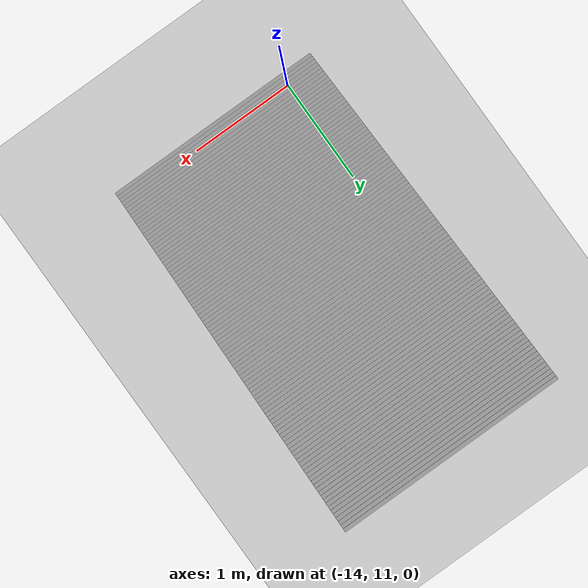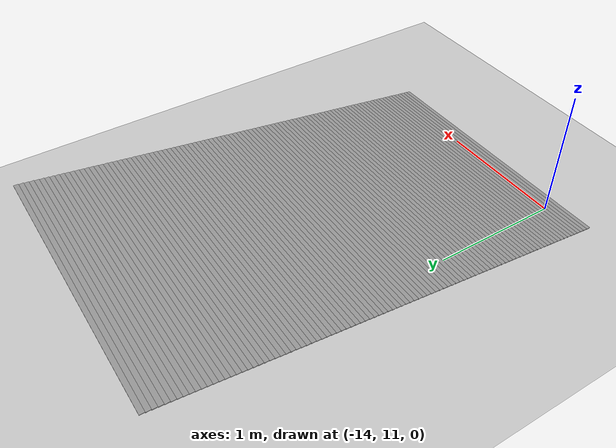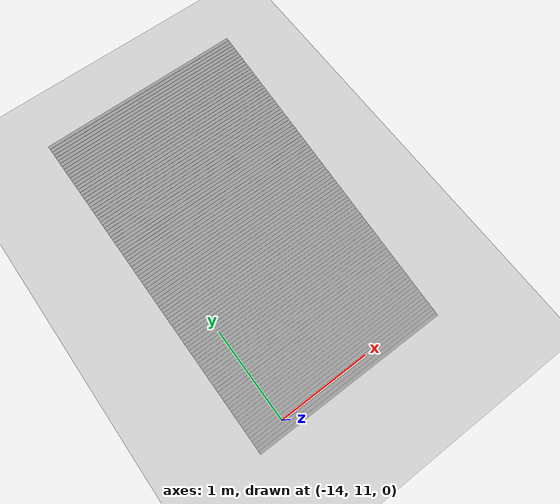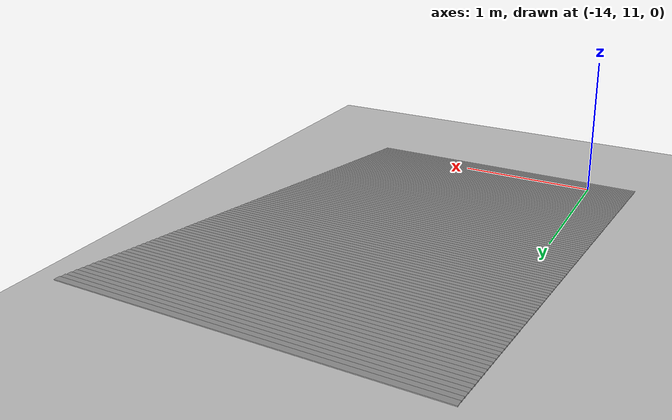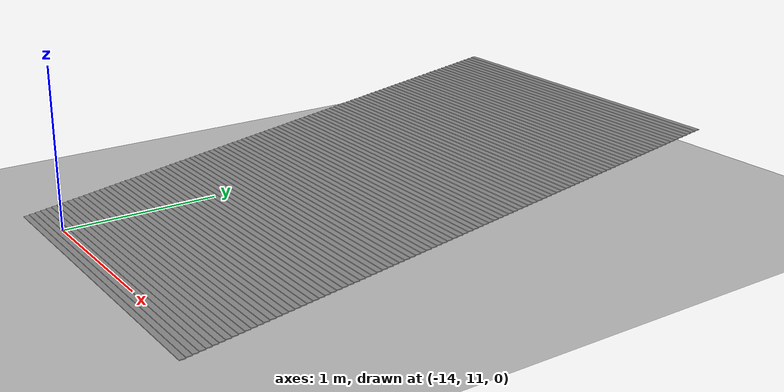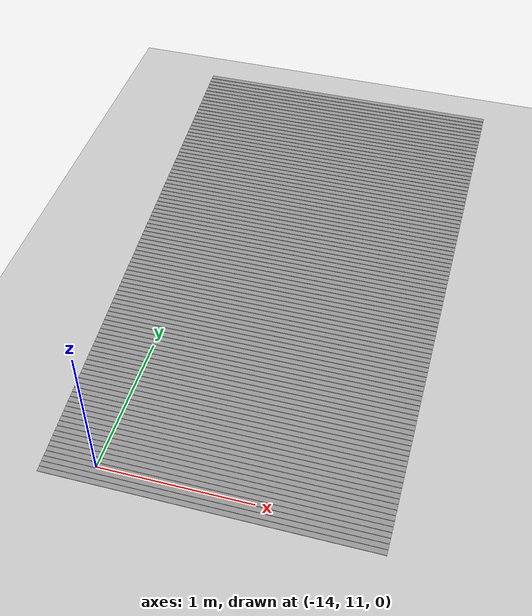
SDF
<sdf version="1.6">
 <world name="default">
  <model name="ground_plane">
   <static>1</static>
   <link name="link">
    <collision name="collision">
     <geometry><plane><normal>0 0 1</normal><size>100 100</size></plane></geometry>
     <surface><friction><ode><mu>100</mu><mu2>50</mu2></ode></friction></surface>
    </collision>
    <visual name="visual">
     <cast_shadows>0</cast_shadows>
     <geometry><plane><normal>0 0 1</normal><size>100 100</size></plane></geometry>
     <material>
      <script><uri>file://media/materials/scripts/gazebo.material</uri><name>Gazebo/Grey</name></script>
     </material>
    </visual>
   </link>
  </model>
  <model name="HRI_MAP">
   <pose>-5.86756 7.56266 0 0 -0 0</pose>
   <link name="Stairs_2">
    <visual name="Stairs_2_Visual_0">
     <pose>-7.39374 3.33186 0.0025 0 -0 -3.14159</pose>
     <geometry><box><size>2.14498 0.035 0.005</size></box></geometry>
     <material>
      <script><uri>file://media/materials/scripts/gazebo.material</uri><name>Gazebo/Grey</name></script>
      <ambient>1 1 1 1</ambient>
     </material>
    </visual>
    <collision name="Stairs_2_Collision_0">
     <geometry><box><size>2.14498 0.035 0.005</size></box></geometry>
     <pose>-7.39374 3.33186 0.0025 0 -0 -3.14159</pose>
    </collision>
    <visual name="Stairs_2_Visual_1">
     <pose>-7.39374 3.36686 0.0075 0 -0 -3.14159</pose>
     <geometry><box><size>2.14498 0.035 0.005</size></box></geometry>
     <material>
      <script><uri>file://media/materials/scripts/gazebo.material</uri><name>Gazebo/Grey</name></script>
      <ambient>1 1 1 1</ambient>
     </material>
    </visual>
    <collision name="Stairs_2_Collision_1">
     <geometry><box><size>2.14498 0.035 0.005</size></box></geometry>
     <pose>-7.39374 3.36686 0.0075 0 -0 -3.14159</pose>
    </collision>
    <visual name="Stairs_2_Visual_2">
     <pose>-7.39374 3.40186 0.0125 0 -0 -3.14159</pose>
     <geometry><box><size>2.14498 0.035 0.005</size></box></geometry>
     <material>
      <script><uri>file://media/materials/scripts/gazebo.material</uri><name>Gazebo/Grey</name></script>
      <ambient>1 1 1 1</ambient>
     </material>
    </visual>
    <collision name="Stairs_2_Collision_2">
     <geometry><box><size>2.14498 0.035 0.005</size></box></geometry>
     <pose>-7.39374 3.40186 0.0125 0 -0 -3.14159</pose>
    </collision>
    <visual name="Stairs_2_Visual_3">
     <pose>-7.39374 3.43686 0.0175 0 -0 -3.14159</pose>
     <geometry><box><size>2.14498 0.035 0.005</size></box></geometry>
     <material>
      <script><uri>file://media/materials/scripts/gazebo.material</uri><name>Gazebo/Grey</name></script>
      <ambient>1 1 1 1</ambient>
     </material>
    </visual>
    <collision name="Stairs_2_Collision_3">
     <geometry><box><size>2.14498 0.035 0.005</size></box></geometry>
     <pose>-7.39374 3.43686 0.0175 0 -0 -3.14159</pose>
    </collision>
    <visual name="Stairs_2_Visual_4">
     <pose>-7.39374 3.47186 0.0225 0 -0 -3.14159</pose>
     <geometry><box><size>2.14498 0.035 0.005</size></box></geometry>
     <material>
      <script><uri>file://media/materials/scripts/gazebo.material</uri><name>Gazebo/Grey</name></script>
      <ambient>1 1 1 1</ambient>
     </material>
    </visual>
    <collision name="Stairs_2_Collision_4">
     <geometry><box><size>2.14498 0.035 0.005</size></box></geometry>
     <pose>-7.39374 3.47186 0.0225 0 -0 -3.14159</pose>
    </collision>
    <visual name="Stairs_2_Visual_5">
     <pose>-7.39374 3.50686 0.0275 0 -0 -3.14159</pose>
     <geometry><box><size>2.14498 0.035 0.005</size></box></geometry>
     <material>
      <script><uri>file://media/materials/scripts/gazebo.material</uri><name>Gazebo/Grey</name></script>
      <ambient>1 1 1 1</ambient>
     </material>
    </visual>
    <collision name="Stairs_2_Collision_5">
     <geometry><box><size>2.14498 0.035 0.005</size></box></geometry>
     <pose>-7.39374 3.50686 0.0275 0 -0 -3.14159</pose>
    </collision>
    <visual name="Stairs_2_Visual_6">
     <pose>-7.39374 3.54186 0.0325 0 -0 -3.14159</pose>
     <geometry><box><size>2.14498 0.035 0.005</size></box></geometry>
     <material>
      <script><uri>file://media/materials/scripts/gazebo.material</uri><name>Gazebo/Grey</name></script>
      <ambient>1 1 1 1</ambient>
     </material>
    </visual>
    <collision name="Stairs_2_Collision_6">
     <geometry><box><size>2.14498 0.035 0.005</size></box></geometry>
     <pose>-7.39374 3.54186 0.0325 0 -0 -3.14159</pose>
    </collision>
    <visual name="Stairs_2_Visual_7">
     <pose>-7.39374 3.57686 0.0375 0 -0 -3.14159</pose>
     <geometry><box><size>2.14498 0.035 0.005</size></box></geometry>
     <material>
      <script><uri>file://media/materials/scripts/gazebo.material</uri><name>Gazebo/Grey</name></script>
      <ambient>1 1 1 1</ambient>
     </material>
    </visual>
    <collision name="Stairs_2_Collision_7">
     <geometry><box><size>2.14498 0.035 0.005</size></box></geometry>
     <pose>-7.39374 3.57686 0.0375 0 -0 -3.14159</pose>
    </collision>
    <visual name="Stairs_2_Visual_8">
     <pose>-7.39374 3.61186 0.0425 0 -0 -3.14159</pose>
     <geometry><box><size>2.14498 0.035 0.005</size></box></geometry>
     <material>
      <script><uri>file://media/materials/scripts/gazebo.material</uri><name>Gazebo/Grey</name></script>
      <ambient>1 1 1 1</ambient>
     </material>
    </visual>
    <collision name="Stairs_2_Collision_8">
     <geometry><box><size>2.14498 0.035 0.005</size></box></geometry>
     <pose>-7.39374 3.61186 0.0425 0 -0 -3.14159</pose>
    </collision>
    <visual name="Stairs_2_Visual_9">
     <pose>-7.39374 3.64686 0.0475 0 -0 -3.14159</pose>
     <geometry><box><size>2.14498 0.035 0.005</size></box></geometry>
     <material>
      <script><uri>file://media/materials/scripts/gazebo.material</uri><name>Gazebo/Grey</name></script>
      <ambient>1 1 1 1</ambient>
     </material>
    </visual>
    <collision name="Stairs_2_Collision_9">
     <geometry><box><size>2.14498 0.035 0.005</size></box></geometry>
     <pose>-7.39374 3.64686 0.0475 0 -0 -3.14159</pose>
    </collision>
    <visual name="Stairs_2_Visual_10">
     <pose>-7.39374 3.68186 0.0525 0 -0 -3.14159</pose>
     <geometry><box><size>2.14498 0.035 0.005</size></box></geometry>
     <material>
      <script><uri>file://media/materials/scripts/gazebo.material</uri><name>Gazebo/Grey</name></script>
      <ambient>1 1 1 1</ambient>
     </material>
    </visual>
    <collision name="Stairs_2_Collision_10">
     <geometry><box><size>2.14498 0.035 0.005</size></box></geometry>
     <pose>-7.39374 3.68186 0.0525 0 -0 -3.14159</pose>
    </collision>
    <visual name="Stairs_2_Visual_11">
     <pose>-7.39374 3.71686 0.0575 0 -0 -3.14159</pose>
     <geometry><box><size>2.14498 0.035 0.005</size></box></geometry>
     <material>
      <script><uri>file://media/materials/scripts/gazebo.material</uri><name>Gazebo/Grey</name></script>
      <ambient>1 1 1 1</ambient>
     </material>
    </visual>
    <collision name="Stairs_2_Collision_11">
     <geometry><box><size>2.14498 0.035 0.005</size></box></geometry>
     <pose>-7.39374 3.71686 0.0575 0 -0 -3.14159</pose>
    </collision>
    <visual name="Stairs_2_Visual_12">
     <pose>-7.39374 3.75186 0.0625 0 -0 -3.14159</pose>
     <geometry><box><size>2.14498 0.035 0.005</size></box></geometry>
     <material>
      <script><uri>file://media/materials/scripts/gazebo.material</uri><name>Gazebo/Grey</name></script>
      <ambient>1 1 1 1</ambient>
     </material>
    </visual>
    <collision name="Stairs_2_Collision_12">
     <geometry><box><size>2.14498 0.035 0.005</size></box></geometry>
     <pose>-7.39374 3.75186 0.0625 0 -0 -3.14159</pose>
    </collision>
    <visual name="Stairs_2_Visual_13">
     <pose>-7.39374 3.78686 0.0675 0 -0 -3.14159</pose>
     <geometry><box><size>2.14498 0.035 0.005</size></box></geometry>
     <material>
      <script><uri>file://media/materials/scripts/gazebo.material</uri><name>Gazebo/Grey</name></script>
      <ambient>1 1 1 1</ambient>
     </material>
    </visual>
    <collision name="Stairs_2_Collision_13">
     <geometry><box><size>2.14498 0.035 0.005</size></box></geometry>
     <pose>-7.39374 3.78686 0.0675 0 -0 -3.14159</pose>
    </collision>
    <visual name="Stairs_2_Visual_14">
     <pose>-7.39374 3.82186 0.0725 0 -0 -3.14159</pose>
     <geometry><box><size>2.14498 0.035 0.005</size></box></geometry>
     <material>
      <script><uri>file://media/materials/scripts/gazebo.material</uri><name>Gazebo/Grey</name></script>
      <ambient>1 1 1 1</ambient>
     </material>
    </visual>
    <collision name="Stairs_2_Collision_14">
     <geometry><box><size>2.14498 0.035 0.005</size></box></geometry>
     <pose>-7.39374 3.82186 0.0725 0 -0 -3.14159</pose>
    </collision>
    <visual name="Stairs_2_Visual_15">
     <pose>-7.39374 3.85686 0.0775 0 -0 -3.14159</pose>
     <geometry><box><size>2.14498 0.035 0.005</size></box></geometry>
     <material>
      <script><uri>file://media/materials/scripts/gazebo.material</uri><name>Gazebo/Grey</name></script>
      <ambient>1 1 1 1</ambient>
     </material>
    </visual>
    <collision name="Stairs_2_Collision_15">
     <geometry><box><size>2.14498 0.035 0.005</size></box></geometry>
     <pose>-7.39374 3.85686 0.0775 0 -0 -3.14159</pose>
    </collision>
    <visual name="Stairs_2_Visual_16">
     <pose>-7.39374 3.89186 0.0825 0 -0 -3.14159</pose>
     <geometry><box><size>2.14498 0.035 0.005</size></box></geometry>
     <material>
      <script><uri>file://media/materials/scripts/gazebo.material</uri><name>Gazebo/Grey</name></script>
      <ambient>1 1 1 1</ambient>
     </material>
    </visual>
    <collision name="Stairs_2_Collision_16">
     <geometry><box><size>2.14498 0.035 0.005</size></box></geometry>
     <pose>-7.39374 3.89186 0.0825 0 -0 -3.14159</pose>
    </collision>
    <visual name="Stairs_2_Visual_17">
     <pose>-7.39374 3.92686 0.0875 0 -0 -3.14159</pose>
     <geometry><box><size>2.14498 0.035 0.005</size></box></geometry>
     <material>
      <script><uri>file://media/materials/scripts/gazebo.material</uri><name>Gazebo/Grey</name></script>
      <ambient>1 1 1 1</ambient>
     </material>
    </visual>
    <collision name="Stairs_2_Collision_17">
     <geometry><box><size>2.14498 0.035 0.005</size></box></geometry>
     <pose>-7.39374 3.92686 0.0875 0 -0 -3.14159</pose>
    </collision>
    <visual name="Stairs_2_Visual_18">
     <pose>-7.39374 3.96186 0.0925 0 -0 -3.14159</pose>
     <geometry><box><size>2.14498 0.035 0.005</size></box></geometry>
     <material>
      <script><uri>file://media/materials/scripts/gazebo.material</uri><name>Gazebo/Grey</name></script>
      <ambient>1 1 1 1</ambient>
     </material>
    </visual>
    <collision name="Stairs_2_Collision_18">
     <geometry><box><size>2.14498 0.035 0.005</size></box></geometry>
     <pose>-7.39374 3.96186 0.0925 0 -0 -3.14159</pose>
    </collision>
    <visual name="Stairs_2_Visual_19">
     <pose>-7.39374 3.99686 0.0975 0 -0 -3.14159</pose>
     <geometry><box><size>2.14498 0.035 0.005</size></box></geometry>
     <material>
      <script><uri>file://media/materials/scripts/gazebo.material</uri><name>Gazebo/Grey</name></script>
      <ambient>1 1 1 1</ambient>
     </material>
    </visual>
    <collision name="Stairs_2_Collision_19">
     <geometry><box><size>2.14498 0.035 0.005</size></box></geometry>
     <pose>-7.39374 3.99686 0.0975 0 -0 -3.14159</pose>
    </collision>
    <visual name="Stairs_2_Visual_20">
     <pose>-7.39374 4.03186 0.1025 0 -0 -3.14159</pose>
     <geometry><box><size>2.14498 0.035 0.005</size></box></geometry>
     <material>
      <script><uri>file://media/materials/scripts/gazebo.material</uri><name>Gazebo/Grey</name></script>
      <ambient>1 1 1 1</ambient>
     </material>
    </visual>
    <collision name="Stairs_2_Collision_20">
     <geometry><box><size>2.14498 0.035 0.005</size></box></geometry>
     <pose>-7.39374 4.03186 0.1025 0 -0 -3.14159</pose>
    </collision>
    <visual name="Stairs_2_Visual_21">
     <pose>-7.39374 4.06686 0.1075 0 -0 -3.14159</pose>
     <geometry><box><size>2.14498 0.035 0.005</size></box></geometry>
     <material>
      <script><uri>file://media/materials/scripts/gazebo.material</uri><name>Gazebo/Grey</name></script>
      <ambient>1 1 1 1</ambient>
     </material>
    </visual>
    <collision name="Stairs_2_Collision_21">
     <geometry><box><size>2.14498 0.035 0.005</size></box></geometry>
     <pose>-7.39374 4.06686 0.1075 0 -0 -3.14159</pose>
    </collision>
    <visual name="Stairs_2_Visual_22">
     <pose>-7.39374 4.10186 0.1125 0 -0 -3.14159</pose>
     <geometry><box><size>2.14498 0.035 0.005</size></box></geometry>
     <material>
      <script><uri>file://media/materials/scripts/gazebo.material</uri><name>Gazebo/Grey</name></script>
      <ambient>1 1 1 1</ambient>
     </material>
    </visual>
    <collision name="Stairs_2_Collision_22">
     <geometry><box><size>2.14498 0.035 0.005</size></box></geometry>
     <pose>-7.39374 4.10186 0.1125 0 -0 -3.14159</pose>
    </collision>
    <visual name="Stairs_2_Visual_23">
     <pose>-7.39374 4.13686 0.1175 0 -0 -3.14159</pose>
     <geometry><box><size>2.14498 0.035 0.005</size></box></geometry>
     <material>
      <script><uri>file://media/materials/scripts/gazebo.material</uri><name>Gazebo/Grey</name></script>
      <ambient>1 1 1 1</ambient>
     </material>
    </visual>
    <collision name="Stairs_2_Collision_23">
     <geometry><box><size>2.14498 0.035 0.005</size></box></geometry>
     <pose>-7.39374 4.13686 0.1175 0 -0 -3.14159</pose>
    </collision>
    <visual name="Stairs_2_Visual_24">
     <pose>-7.39374 4.17186 0.1225 0 -0 -3.14159</pose>
     <geometry><box><size>2.14498 0.035 0.005</size></box></geometry>
     <material>
      <script><uri>file://media/materials/scripts/gazebo.material</uri><name>Gazebo/Grey</name></script>
      <ambient>1 1 1 1</ambient>
     </material>
    </visual>
    <collision name="Stairs_2_Collision_24">
     <geometry><box><size>2.14498 0.035 0.005</size></box></geometry>
     <pose>-7.39374 4.17186 0.1225 0 -0 -3.14159</pose>
    </collision>
    <visual name="Stairs_2_Visual_25">
     <pose>-7.39374 4.20686 0.1275 0 -0 -3.14159</pose>
     <geometry><box><size>2.14498 0.035 0.005</size></box></geometry>
     <material>
      <script><uri>file://media/materials/scripts/gazebo.material</uri><name>Gazebo/Grey</name></script>
      <ambient>1 1 1 1</ambient>
     </material>
    </visual>
    <collision name="Stairs_2_Collision_25">
     <geometry><box><size>2.14498 0.035 0.005</size></box></geometry>
     <pose>-7.39374 4.20686 0.1275 0 -0 -3.14159</pose>
    </collision>
    <visual name="Stairs_2_Visual_26">
     <pose>-7.39374 4.24186 0.1325 0 -0 -3.14159</pose>
     <geometry><box><size>2.14498 0.035 0.005</size></box></geometry>
     <material>
      <script><uri>file://media/materials/scripts/gazebo.material</uri><name>Gazebo/Grey</name></script>
      <ambient>1 1 1 1</ambient>
     </material>
    </visual>
    <collision name="Stairs_2_Collision_26">
     <geometry><box><size>2.14498 0.035 0.005</size></box></geometry>
     <pose>-7.39374 4.24186 0.1325 0 -0 -3.14159</pose>
    </collision>
    <visual name="Stairs_2_Visual_27">
     <pose>-7.39374 4.27686 0.1375 0 -0 -3.14159</pose>
     <geometry><box><size>2.14498 0.035 0.005</size></box></geometry>
     <material>
      <script><uri>file://media/materials/scripts/gazebo.material</uri><name>Gazebo/Grey</name></script>
      <ambient>1 1 1 1</ambient>
     </material>
    </visual>
    <collision name="Stairs_2_Collision_27">
     <geometry><box><size>2.14498 0.035 0.005</size></box></geometry>
     <pose>-7.39374 4.27686 0.1375 0 -0 -3.14159</pose>
    </collision>
    <visual name="Stairs_2_Visual_28">
     <pose>-7.39374 4.31186 0.1425 0 -0 -3.14159</pose>
     <geometry><box><size>2.14498 0.035 0.005</size></box></geometry>
     <material>
      <script><uri>file://media/materials/scripts/gazebo.material</uri><name>Gazebo/Grey</name></script>
      <ambient>1 1 1 1</ambient>
     </material>
    </visual>
    <collision name="Stairs_2_Collision_28">
     <geometry><box><size>2.14498 0.035 0.005</size></box></geometry>
     <pose>-7.39374 4.31186 0.1425 0 -0 -3.14159</pose>
    </collision>
    <visual name="Stairs_2_Visual_29">
     <pose>-7.39374 4.34686 0.1475 0 -0 -3.14159</pose>
     <geometry><box><size>2.14498 0.035 0.005</size></box></geometry>
     <material>
      <script><uri>file://media/materials/scripts/gazebo.material</uri><name>Gazebo/Grey</name></script>
      <ambient>1 1 1 1</ambient>
     </material>
    </visual>
    <collision name="Stairs_2_Collision_29">
     <geometry><box><size>2.14498 0.035 0.005</size></box></geometry>
     <pose>-7.39374 4.34686 0.1475 0 -0 -3.14159</pose>
    </collision>
    <visual name="Stairs_2_Visual_30">
     <pose>-7.39374 4.38186 0.1525 0 -0 -3.14159</pose>
     <geometry><box><size>2.14498 0.035 0.005</size></box></geometry>
     <material>
      <script><uri>file://media/materials/scripts/gazebo.material</uri><name>Gazebo/Grey</name></script>
      <ambient>1 1 1 1</ambient>
     </material>
    </visual>
    <collision name="Stairs_2_Collision_30">
     <geometry><box><size>2.14498 0.035 0.005</size></box></geometry>
     <pose>-7.39374 4.38186 0.1525 0 -0 -3.14159</pose>
    </collision>
    <visual name="Stairs_2_Visual_31">
     <pose>-7.39374 4.41686 0.1575 0 -0 -3.14159</pose>
     <geometry><box><size>2.14498 0.035 0.005</size></box></geometry>
     <material>
      <script><uri>file://media/materials/scripts/gazebo.material</uri><name>Gazebo/Grey</name></script>
      <ambient>1 1 1 1</ambient>
     </material>
    </visual>
    <collision name="Stairs_2_Collision_31">
     <geometry><box><size>2.14498 0.035 0.005</size></box></geometry>
     <pose>-7.39374 4.41686 0.1575 0 -0 -3.14159</pose>
    </collision>
    <visual name="Stairs_2_Visual_32">
     <pose>-7.39374 4.45186 0.1625 0 -0 -3.14159</pose>
     <geometry><box><size>2.14498 0.035 0.005</size></box></geometry>
     <material>
      <script><uri>file://media/materials/scripts/gazebo.material</uri><name>Gazebo/Grey</name></script>
      <ambient>1 1 1 1</ambient>
     </material>
    </visual>
    <collision name="Stairs_2_Collision_32">
     <geometry><box><size>2.14498 0.035 0.005</size></box></geometry>
     <pose>-7.39374 4.45186 0.1625 0 -0 -3.14159</pose>
    </collision>
    <visual name="Stairs_2_Visual_33">
     <pose>-7.39374 4.48686 0.1675 0 -0 -3.14159</pose>
     <geometry><box><size>2.14498 0.035 0.005</size></box></geometry>
     <material>
      <script><uri>file://media/materials/scripts/gazebo.material</uri><name>Gazebo/Grey</name></script>
      <ambient>1 1 1 1</ambient>
     </material>
    </visual>
    <collision name="Stairs_2_Collision_33">
     <geometry><box><size>2.14498 0.035 0.005</size></box></geometry>
     <pose>-7.39374 4.48686 0.1675 0 -0 -3.14159</pose>
    </collision>
    <visual name="Stairs_2_Visual_34">
     <pose>-7.39374 4.52186 0.1725 0 -0 -3.14159</pose>
     <geometry><box><size>2.14498 0.035 0.005</size></box></geometry>
     <material>
      <script><uri>file://media/materials/scripts/gazebo.material</uri><name>Gazebo/Grey</name></script>
      <ambient>1 1 1 1</ambient>
     </material>
    </visual>
    <collision name="Stairs_2_Collision_34">
     <geometry><box><size>2.14498 0.035 0.005</size></box></geometry>
     <pose>-7.39374 4.52186 0.1725 0 -0 -3.14159</pose>
    </collision>
    <visual name="Stairs_2_Visual_35">
     <pose>-7.39374 4.55686 0.1775 0 -0 -3.14159</pose>
     <geometry><box><size>2.14498 0.035 0.005</size></box></geometry>
     <material>
      <script><uri>file://media/materials/scripts/gazebo.material</uri><name>Gazebo/Grey</name></script>
      <ambient>1 1 1 1</ambient>
     </material>
    </visual>
    <collision name="Stairs_2_Collision_35">
     <geometry><box><size>2.14498 0.035 0.005</size></box></geometry>
     <pose>-7.39374 4.55686 0.1775 0 -0 -3.14159</pose>
    </collision>
    <visual name="Stairs_2_Visual_36">
     <pose>-7.39374 4.59186 0.1825 0 -0 -3.14159</pose>
     <geometry><box><size>2.14498 0.035 0.005</size></box></geometry>
     <material>
      <script><uri>file://media/materials/scripts/gazebo.material</uri><name>Gazebo/Grey</name></script>
      <ambient>1 1 1 1</ambient>
     </material>
    </visual>
    <collision name="Stairs_2_Collision_36">
     <geometry><box><size>2.14498 0.035 0.005</size></box></geometry>
     <pose>-7.39374 4.59186 0.1825 0 -0 -3.14159</pose>
    </collision>
    <visual name="Stairs_2_Visual_37">
     <pose>-7.39374 4.62686 0.1875 0 -0 -3.14159</pose>
     <geometry><box><size>2.14498 0.035 0.005</size></box></geometry>
     <material>
      <script><uri>file://media/materials/scripts/gazebo.material</uri><name>Gazebo/Grey</name></script>
      <ambient>1 1 1 1</ambient>
     </material>
    </visual>
    <collision name="Stairs_2_Collision_37">
     <geometry><box><size>2.14498 0.035 0.005</size></box></geometry>
     <pose>-7.39374 4.62686 0.1875 0 -0 -3.14159</pose>
    </collision>
    <visual name="Stairs_2_Visual_38">
     <pose>-7.39374 4.66186 0.1925 0 -0 -3.14159</pose>
     <geometry><box><size>2.14498 0.035 0.005</size></box></geometry>
     <material>
      <script><uri>file://media/materials/scripts/gazebo.material</uri><name>Gazebo/Grey</name></script>
      <ambient>1 1 1 1</ambient>
     </material>
    </visual>
    <collision name="Stairs_2_Collision_38">
     <geometry><box><size>2.14498 0.035 0.005</size></box></geometry>
     <pose>-7.39374 4.66186 0.1925 0 -0 -3.14159</pose>
    </collision>
    <visual name="Stairs_2_Visual_39">
     <pose>-7.39374 4.69686 0.1975 0 -0 -3.14159</pose>
     <geometry><box><size>2.14498 0.035 0.005</size></box></geometry>
     <material>
      <script><uri>file://media/materials/scripts/gazebo.material</uri><name>Gazebo/Grey</name></script>
      <ambient>1 1 1 1</ambient>
     </material>
    </visual>
    <collision name="Stairs_2_Collision_39">
     <geometry><box><size>2.14498 0.035 0.005</size></box></geometry>
     <pose>-7.39374 4.69686 0.1975 0 -0 -3.14159</pose>
    </collision>
    <visual name="Stairs_2_Visual_40">
     <pose>-7.39374 4.73186 0.2025 0 -0 -3.14159</pose>
     <geometry><box><size>2.14498 0.035 0.005</size></box></geometry>
     <material>
      <script><uri>file://media/materials/scripts/gazebo.material</uri><name>Gazebo/Grey</name></script>
      <ambient>1 1 1 1</ambient>
     </material>
    </visual>
    <collision name="Stairs_2_Collision_40">
     <geometry><box><size>2.14498 0.035 0.005</size></box></geometry>
     <pose>-7.39374 4.73186 0.2025 0 -0 -3.14159</pose>
    </collision>
    <visual name="Stairs_2_Visual_41">
     <pose>-7.39374 4.76686 0.2075 0 -0 -3.14159</pose>
     <geometry><box><size>2.14498 0.035 0.005</size></box></geometry>
     <material>
      <script><uri>file://media/materials/scripts/gazebo.material</uri><name>Gazebo/Grey</name></script>
      <ambient>1 1 1 1</ambient>
     </material>
    </visual>
    <collision name="Stairs_2_Collision_41">
     <geometry><box><size>2.14498 0.035 0.005</size></box></geometry>
     <pose>-7.39374 4.76686 0.2075 0 -0 -3.14159</pose>
    </collision>
    <visual name="Stairs_2_Visual_42">
     <pose>-7.39374 4.80186 0.2125 0 -0 -3.14159</pose>
     <geometry><box><size>2.14498 0.035 0.005</size></box></geometry>
     <material>
      <script><uri>file://media/materials/scripts/gazebo.material</uri><name>Gazebo/Grey</name></script>
      <ambient>1 1 1 1</ambient>
     </material>
    </visual>
    <collision name="Stairs_2_Collision_42">
     <geometry><box><size>2.14498 0.035 0.005</size></box></geometry>
     <pose>-7.39374 4.80186 0.2125 0 -0 -3.14159</pose>
    </collision>
    <visual name="Stairs_2_Visual_43">
     <pose>-7.39374 4.83686 0.2175 0 -0 -3.14159</pose>
     <geometry><box><size>2.14498 0.035 0.005</size></box></geometry>
     <material>
      <script><uri>file://media/materials/scripts/gazebo.material</uri><name>Gazebo/Grey</name></script>
      <ambient>1 1 1 1</ambient>
     </material>
    </visual>
    <collision name="Stairs_2_Collision_43">
     <geometry><box><size>2.14498 0.035 0.005</size></box></geometry>
     <pose>-7.39374 4.83686 0.2175 0 -0 -3.14159</pose>
    </collision>
    <visual name="Stairs_2_Visual_44">
     <pose>-7.39374 4.87186 0.2225 0 -0 -3.14159</pose>
     <geometry><box><size>2.14498 0.035 0.005</size></box></geometry>
     <material>
      <script><uri>file://media/materials/scripts/gazebo.material</uri><name>Gazebo/Grey</name></script>
      <ambient>1 1 1 1</ambient>
     </material>
    </visual>
    <collision name="Stairs_2_Collision_44">
     <geometry><box><size>2.14498 0.035 0.005</size></box></geometry>
     <pose>-7.39374 4.87186 0.2225 0 -0 -3.14159</pose>
    </collision>
    <visual name="Stairs_2_Visual_45">
     <pose>-7.39374 4.90686 0.2275 0 -0 -3.14159</pose>
     <geometry><box><size>2.14498 0.035 0.005</size></box></geometry>
     <material>
      <script><uri>file://media/materials/scripts/gazebo.material</uri><name>Gazebo/Grey</name></script>
      <ambient>1 1 1 1</ambient>
     </material>
    </visual>
    <collision name="Stairs_2_Collision_45">
     <geometry><box><size>2.14498 0.035 0.005</size></box></geometry>
     <pose>-7.39374 4.90686 0.2275 0 -0 -3.14159</pose>
    </collision>
    <visual name="Stairs_2_Visual_46">
     <pose>-7.39374 4.94186 0.2325 0 -0 -3.14159</pose>
     <geometry><box><size>2.14498 0.035 0.005</size></box></geometry>
     <material>
      <script><uri>file://media/materials/scripts/gazebo.material</uri><name>Gazebo/Grey</name></script>
      <ambient>1 1 1 1</ambient>
     </material>
    </visual>
    <collision name="Stairs_2_Collision_46">
     <geometry><box><size>2.14498 0.035 0.005</size></box></geometry>
     <pose>-7.39374 4.94186 0.2325 0 -0 -3.14159</pose>
    </collision>
    <visual name="Stairs_2_Visual_47">
     <pose>-7.39374 4.97686 0.2375 0 -0 -3.14159</pose>
     <geometry><box><size>2.14498 0.035 0.005</size></box></geometry>
     <material>
      <script><uri>file://media/materials/scripts/gazebo.material</uri><name>Gazebo/Grey</name></script>
      <ambient>1 1 1 1</ambient>
     </material>
    </visual>
    <collision name="Stairs_2_Collision_47">
     <geometry><box><size>2.14498 0.035 0.005</size></box></geometry>
     <pose>-7.39374 4.97686 0.2375 0 -0 -3.14159</pose>
    </collision>
    <visual name="Stairs_2_Visual_48">
     <pose>-7.39374 5.01186 0.2425 0 -0 -3.14159</pose>
     <geometry><box><size>2.14498 0.035 0.005</size></box></geometry>
     <material>
      <script><uri>file://media/materials/scripts/gazebo.material</uri><name>Gazebo/Grey</name></script>
      <ambient>1 1 1 1</ambient>
     </material>
    </visual>
    <collision name="Stairs_2_Collision_48">
     <geometry><box><size>2.14498 0.035 0.005</size></box></geometry>
     <pose>-7.39374 5.01186 0.2425 0 -0 -3.14159</pose>
    </collision>
    <visual name="Stairs_2_Visual_49">
     <pose>-7.39374 5.04686 0.2475 0 -0 -3.14159</pose>
     <geometry><box><size>2.14498 0.035 0.005</size></box></geometry>
     <material>
      <script><uri>file://media/materials/scripts/gazebo.material</uri><name>Gazebo/Grey</name></script>
      <ambient>1 1 1 1</ambient>
     </material>
    </visual>
    <collision name="Stairs_2_Collision_49">
     <geometry><box><size>2.14498 0.035 0.005</size></box></geometry>
     <pose>-7.39374 5.04686 0.2475 0 -0 -3.14159</pose>
    </collision>
    <visual name="Stairs_2_Visual_50">
     <pose>-7.39374 5.08186 0.2525 0 -0 -3.14159</pose>
     <geometry><box><size>2.14498 0.035 0.005</size></box></geometry>
     <material>
      <script><uri>file://media/materials/scripts/gazebo.material</uri><name>Gazebo/Grey</name></script>
      <ambient>1 1 1 1</ambient>
     </material>
    </visual>
    <collision name="Stairs_2_Collision_50">
     <geometry><box><size>2.14498 0.035 0.005</size></box></geometry>
     <pose>-7.39374 5.08186 0.2525 0 -0 -3.14159</pose>
    </collision>
    <visual name="Stairs_2_Visual_51">
     <pose>-7.39374 5.11686 0.2575 0 -0 -3.14159</pose>
     <geometry><box><size>2.14498 0.035 0.005</size></box></geometry>
     <material>
      <script><uri>file://media/materials/scripts/gazebo.material</uri><name>Gazebo/Grey</name></script>
      <ambient>1 1 1 1</ambient>
     </material>
    </visual>
    <collision name="Stairs_2_Collision_51">
     <geometry><box><size>2.14498 0.035 0.005</size></box></geometry>
     <pose>-7.39374 5.11686 0.2575 0 -0 -3.14159</pose>
    </collision>
    <visual name="Stairs_2_Visual_52">
     <pose>-7.39374 5.15186 0.2625 0 -0 -3.14159</pose>
     <geometry><box><size>2.14498 0.035 0.005</size></box></geometry>
     <material>
      <script><uri>file://media/materials/scripts/gazebo.material</uri><name>Gazebo/Grey</name></script>
      <ambient>1 1 1 1</ambient>
     </material>
    </visual>
    <collision name="Stairs_2_Collision_52">
     <geometry><box><size>2.14498 0.035 0.005</size></box></geometry>
     <pose>-7.39374 5.15186 0.2625 0 -0 -3.14159</pose>
    </collision>
    <visual name="Stairs_2_Visual_53">
     <pose>-7.39374 5.18686 0.2675 0 -0 -3.14159</pose>
     <geometry><box><size>2.14498 0.035 0.005</size></box></geometry>
     <material>
      <script><uri>file://media/materials/scripts/gazebo.material</uri><name>Gazebo/Grey</name></script>
      <ambient>1 1 1 1</ambient>
     </material>
    </visual>
    <collision name="Stairs_2_Collision_53">
     <geometry><box><size>2.14498 0.035 0.005</size></box></geometry>
     <pose>-7.39374 5.18686 0.2675 0 -0 -3.14159</pose>
    </collision>
    <visual name="Stairs_2_Visual_54">
     <pose>-7.39374 5.22186 0.2725 0 -0 -3.14159</pose>
     <geometry><box><size>2.14498 0.035 0.005</size></box></geometry>
     <material>
      <script><uri>file://media/materials/scripts/gazebo.material</uri><name>Gazebo/Grey</name></script>
      <ambient>1 1 1 1</ambient>
     </material>
    </visual>
    <collision name="Stairs_2_Collision_54">
     <geometry><box><size>2.14498 0.035 0.005</size></box></geometry>
     <pose>-7.39374 5.22186 0.2725 0 -0 -3.14159</pose>
    </collision>
    <visual name="Stairs_2_Visual_55">
     <pose>-7.39374 5.25686 0.2775 0 -0 -3.14159</pose>
     <geometry><box><size>2.14498 0.035 0.005</size></box></geometry>
     <material>
      <script><uri>file://media/materials/scripts/gazebo.material</uri><name>Gazebo/Grey</name></script>
      <ambient>1 1 1 1</ambient>
     </material>
    </visual>
    <collision name="Stairs_2_Collision_55">
     <geometry><box><size>2.14498 0.035 0.005</size></box></geometry>
     <pose>-7.39374 5.25686 0.2775 0 -0 -3.14159</pose>
    </collision>
    <visual name="Stairs_2_Visual_56">
     <pose>-7.39374 5.29186 0.2825 0 -0 -3.14159</pose>
     <geometry><box><size>2.14498 0.035 0.005</size></box></geometry>
     <material>
      <script><uri>file://media/materials/scripts/gazebo.material</uri><name>Gazebo/Grey</name></script>
      <ambient>1 1 1 1</ambient>
     </material>
    </visual>
    <collision name="Stairs_2_Collision_56">
     <geometry><box><size>2.14498 0.035 0.005</size></box></geometry>
     <pose>-7.39374 5.29186 0.2825 0 -0 -3.14159</pose>
    </collision>
    <visual name="Stairs_2_Visual_57">
     <pose>-7.39374 5.32686 0.2875 0 -0 -3.14159</pose>
     <geometry><box><size>2.14498 0.035 0.005</size></box></geometry>
     <material>
      <script><uri>file://media/materials/scripts/gazebo.material</uri><name>Gazebo/Grey</name></script>
      <ambient>1 1 1 1</ambient>
     </material>
    </visual>
    <collision name="Stairs_2_Collision_57">
     <geometry><box><size>2.14498 0.035 0.005</size></box></geometry>
     <pose>-7.39374 5.32686 0.2875 0 -0 -3.14159</pose>
    </collision>
    <visual name="Stairs_2_Visual_58">
     <pose>-7.39374 5.36186 0.2925 0 -0 -3.14159</pose>
     <geometry><box><size>2.14498 0.035 0.005</size></box></geometry>
     <material>
      <script><uri>file://media/materials/scripts/gazebo.material</uri><name>Gazebo/Grey</name></script>
      <ambient>1 1 1 1</ambient>
     </material>
    </visual>
    <collision name="Stairs_2_Collision_58">
     <geometry><box><size>2.14498 0.035 0.005</size></box></geometry>
     <pose>-7.39374 5.36186 0.2925 0 -0 -3.14159</pose>
    </collision>
    <visual name="Stairs_2_Visual_59">
     <pose>-7.39374 5.39686 0.2975 0 -0 -3.14159</pose>
     <geometry><box><size>2.14498 0.035 0.005</size></box></geometry>
     <material>
      <script><uri>file://media/materials/scripts/gazebo.material</uri><name>Gazebo/Grey</name></script>
      <ambient>1 1 1 1</ambient>
     </material>
    </visual>
    <collision name="Stairs_2_Collision_59">
     <geometry><box><size>2.14498 0.035 0.005</size></box></geometry>
     <pose>-7.39374 5.39686 0.2975 0 -0 -3.14159</pose>
    </collision>
    <visual name="Stairs_2_Visual_60">
     <pose>-7.39374 5.43186 0.3025 0 -0 -3.14159</pose>
     <geometry><box><size>2.14498 0.035 0.005</size></box></geometry>
     <material>
      <script><uri>file://media/materials/scripts/gazebo.material</uri><name>Gazebo/Grey</name></script>
      <ambient>1 1 1 1</ambient>
     </material>
    </visual>
    <collision name="Stairs_2_Collision_60">
     <geometry><box><size>2.14498 0.035 0.005</size></box></geometry>
     <pose>-7.39374 5.43186 0.3025 0 -0 -3.14159</pose>
    </collision>
    <visual name="Stairs_2_Visual_61">
     <pose>-7.39374 5.46686 0.3075 0 -0 -3.14159</pose>
     <geometry><box><size>2.14498 0.035 0.005</size></box></geometry>
     <material>
      <script><uri>file://media/materials/scripts/gazebo.material</uri><name>Gazebo/Grey</name></script>
      <ambient>1 1 1 1</ambient>
     </material>
    </visual>
    <collision name="Stairs_2_Collision_61">
     <geometry><box><size>2.14498 0.035 0.005</size></box></geometry>
     <pose>-7.39374 5.46686 0.3075 0 -0 -3.14159</pose>
    </collision>
    <visual name="Stairs_2_Visual_62">
     <pose>-7.39374 5.50186 0.3125 0 -0 -3.14159</pose>
     <geometry><box><size>2.14498 0.035 0.005</size></box></geometry>
     <material>
      <script><uri>file://media/materials/scripts/gazebo.material</uri><name>Gazebo/Grey</name></script>
      <ambient>1 1 1 1</ambient>
     </material>
    </visual>
    <collision name="Stairs_2_Collision_62">
     <geometry><box><size>2.14498 0.035 0.005</size></box></geometry>
     <pose>-7.39374 5.50186 0.3125 0 -0 -3.14159</pose>
    </collision>
    <visual name="Stairs_2_Visual_63">
     <pose>-7.39374 5.53686 0.3175 0 -0 -3.14159</pose>
     <geometry><box><size>2.14498 0.035 0.005</size></box></geometry>
     <material>
      <script><uri>file://media/materials/scripts/gazebo.material</uri><name>Gazebo/Grey</name></script>
      <ambient>1 1 1 1</ambient>
     </material>
    </visual>
    <collision name="Stairs_2_Collision_63">
     <geometry><box><size>2.14498 0.035 0.005</size></box></geometry>
     <pose>-7.39374 5.53686 0.3175 0 -0 -3.14159</pose>
    </collision>
    <visual name="Stairs_2_Visual_64">
     <pose>-7.39374 5.57186 0.3225 0 -0 -3.14159</pose>
     <geometry><box><size>2.14498 0.035 0.005</size></box></geometry>
     <material>
      <script><uri>file://media/materials/scripts/gazebo.material</uri><name>Gazebo/Grey</name></script>
      <ambient>1 1 1 1</ambient>
     </material>
    </visual>
    <collision name="Stairs_2_Collision_64">
     <geometry><box><size>2.14498 0.035 0.005</size></box></geometry>
     <pose>-7.39374 5.57186 0.3225 0 -0 -3.14159</pose>
    </collision>
    <visual name="Stairs_2_Visual_65">
     <pose>-7.39374 5.60686 0.3275 0 -0 -3.14159</pose>
     <geometry><box><size>2.14498 0.035 0.005</size></box></geometry>
     <material>
      <script><uri>file://media/materials/scripts/gazebo.material</uri><name>Gazebo/Grey</name></script>
      <ambient>1 1 1 1</ambient>
     </material>
    </visual>
    <collision name="Stairs_2_Collision_65">
     <geometry><box><size>2.14498 0.035 0.005</size></box></geometry>
     <pose>-7.39374 5.60686 0.3275 0 -0 -3.14159</pose>
    </collision>
    <visual name="Stairs_2_Visual_66">
     <pose>-7.39374 5.64186 0.3325 0 -0 -3.14159</pose>
     <geometry><box><size>2.14498 0.035 0.005</size></box></geometry>
     <material>
      <script><uri>file://media/materials/scripts/gazebo.material</uri><name>Gazebo/Grey</name></script>
      <ambient>1 1 1 1</ambient>
     </material>
    </visual>
    <collision name="Stairs_2_Collision_66">
     <geometry><box><size>2.14498 0.035 0.005</size></box></geometry>
     <pose>-7.39374 5.64186 0.3325 0 -0 -3.14159</pose>
    </collision>
    <visual name="Stairs_2_Visual_67">
     <pose>-7.39374 5.67686 0.3375 0 -0 -3.14159</pose>
     <geometry><box><size>2.14498 0.035 0.005</size></box></geometry>
     <material>
      <script><uri>file://media/materials/scripts/gazebo.material</uri><name>Gazebo/Grey</name></script>
      <ambient>1 1 1 1</ambient>
     </material>
    </visual>
    <collision name="Stairs_2_Collision_67">
     <geometry><box><size>2.14498 0.035 0.005</size></box></geometry>
     <pose>-7.39374 5.67686 0.3375 0 -0 -3.14159</pose>
    </collision>
    <visual name="Stairs_2_Visual_68">
     <pose>-7.39374 5.71186 0.3425 0 -0 -3.14159</pose>
     <geometry><box><size>2.14498 0.035 0.005</size></box></geometry>
     <material>
      <script><uri>file://media/materials/scripts/gazebo.material</uri><name>Gazebo/Grey</name></script>
      <ambient>1 1 1 1</ambient>
     </material>
    </visual>
    <collision name="Stairs_2_Collision_68">
     <geometry><box><size>2.14498 0.035 0.005</size></box></geometry>
     <pose>-7.39374 5.71186 0.3425 0 -0 -3.14159</pose>
    </collision>
    <visual name="Stairs_2_Visual_69">
     <pose>-7.39374 5.74686 0.3475 0 -0 -3.14159</pose>
     <geometry><box><size>2.14498 0.035 0.005</size></box></geometry>
     <material>
      <script><uri>file://media/materials/scripts/gazebo.material</uri><name>Gazebo/Grey</name></script>
      <ambient>1 1 1 1</ambient>
     </material>
    </visual>
    <collision name="Stairs_2_Collision_69">
     <geometry><box><size>2.14498 0.035 0.005</size></box></geometry>
     <pose>-7.39374 5.74686 0.3475 0 -0 -3.14159</pose>
    </collision>
    <visual name="Stairs_2_Visual_70">
     <pose>-7.39374 5.78186 0.3525 0 -0 -3.14159</pose>
     <geometry><box><size>2.14498 0.035 0.005</size></box></geometry>
     <material>
      <script><uri>file://media/materials/scripts/gazebo.material</uri><name>Gazebo/Grey</name></script>
      <ambient>1 1 1 1</ambient>
     </material>
    </visual>
    <collision name="Stairs_2_Collision_70">
     <geometry><box><size>2.14498 0.035 0.005</size></box></geometry>
     <pose>-7.39374 5.78186 0.3525 0 -0 -3.14159</pose>
    </collision>
    <visual name="Stairs_2_Visual_71">
     <pose>-7.39374 5.81686 0.3575 0 -0 -3.14159</pose>
     <geometry><box><size>2.14498 0.035 0.005</size></box></geometry>
     <material>
      <script><uri>file://media/materials/scripts/gazebo.material</uri><name>Gazebo/Grey</name></script>
      <ambient>1 1 1 1</ambient>
     </material>
    </visual>
    <collision name="Stairs_2_Collision_71">
     <geometry><box><size>2.14498 0.035 0.005</size></box></geometry>
     <pose>-7.39374 5.81686 0.3575 0 -0 -3.14159</pose>
    </collision>
    <visual name="Stairs_2_Visual_72">
     <pose>-7.39374 5.85186 0.3625 0 -0 -3.14159</pose>
     <geometry><box><size>2.14498 0.035 0.005</size></box></geometry>
     <material>
      <script><uri>file://media/materials/scripts/gazebo.material</uri><name>Gazebo/Grey</name></script>
      <ambient>1 1 1 1</ambient>
     </material>
    </visual>
    <collision name="Stairs_2_Collision_72">
     <geometry><box><size>2.14498 0.035 0.005</size></box></geometry>
     <pose>-7.39374 5.85186 0.3625 0 -0 -3.14159</pose>
    </collision>
    <visual name="Stairs_2_Visual_73">
     <pose>-7.39374 5.88686 0.3675 0 -0 -3.14159</pose>
     <geometry><box><size>2.14498 0.035 0.005</size></box></geometry>
     <material>
      <script><uri>file://media/materials/scripts/gazebo.material</uri><name>Gazebo/Grey</name></script>
      <ambient>1 1 1 1</ambient>
     </material>
    </visual>
    <collision name="Stairs_2_Collision_73">
     <geometry><box><size>2.14498 0.035 0.005</size></box></geometry>
     <pose>-7.39374 5.88686 0.3675 0 -0 -3.14159</pose>
    </collision>
    <visual name="Stairs_2_Visual_74">
     <pose>-7.39374 5.92186 0.3725 0 -0 -3.14159</pose>
     <geometry><box><size>2.14498 0.035 0.005</size></box></geometry>
     <material>
      <script><uri>file://media/materials/scripts/gazebo.material</uri><name>Gazebo/Grey</name></script>
      <ambient>1 1 1 1</ambient>
     </material>
    </visual>
    <collision name="Stairs_2_Collision_74">
     <geometry><box><size>2.14498 0.035 0.005</size></box></geometry>
     <pose>-7.39374 5.92186 0.3725 0 -0 -3.14159</pose>
    </collision>
    <visual name="Stairs_2_Visual_75">
     <pose>-7.39374 5.95686 0.3775 0 -0 -3.14159</pose>
     <geometry><box><size>2.14498 0.035 0.005</size></box></geometry>
     <material>
      <script><uri>file://media/materials/scripts/gazebo.material</uri><name>Gazebo/Grey</name></script>
      <ambient>1 1 1 1</ambient>
     </material>
    </visual>
    <collision name="Stairs_2_Collision_75">
     <geometry><box><size>2.14498 0.035 0.005</size></box></geometry>
     <pose>-7.39374 5.95686 0.3775 0 -0 -3.14159</pose>
    </collision>
    <visual name="Stairs_2_Visual_76">
     <pose>-7.39374 5.99186 0.3825 0 -0 -3.14159</pose>
     <geometry><box><size>2.14498 0.035 0.005</size></box></geometry>
     <material>
      <script><uri>file://media/materials/scripts/gazebo.material</uri><name>Gazebo/Grey</name></script>
      <ambient>1 1 1 1</ambient>
     </material>
    </visual>
    <collision name="Stairs_2_Collision_76">
     <geometry><box><size>2.14498 0.035 0.005</size></box></geometry>
     <pose>-7.39374 5.99186 0.3825 0 -0 -3.14159</pose>
    </collision>
    <visual name="Stairs_2_Visual_77">
     <pose>-7.39374 6.02686 0.3875 0 -0 -3.14159</pose>
     <geometry><box><size>2.14498 0.035 0.005</size></box></geometry>
     <material>
      <script><uri>file://media/materials/scripts/gazebo.material</uri><name>Gazebo/Grey</name></script>
      <ambient>1 1 1 1</ambient>
     </material>
    </visual>
    <collision name="Stairs_2_Collision_77">
     <geometry><box><size>2.14498 0.035 0.005</size></box></geometry>
     <pose>-7.39374 6.02686 0.3875 0 -0 -3.14159</pose>
    </collision>
    <visual name="Stairs_2_Visual_78">
     <pose>-7.39374 6.06186 0.3925 0 -0 -3.14159</pose>
     <geometry><box><size>2.14498 0.035 0.005</size></box></geometry>
     <material>
      <script><uri>file://media/materials/scripts/gazebo.material</uri><name>Gazebo/Grey</name></script>
      <ambient>1 1 1 1</ambient>
     </material>
    </visual>
    <collision name="Stairs_2_Collision_78">
     <geometry><box><size>2.14498 0.035 0.005</size></box></geometry>
     <pose>-7.39374 6.06186 0.3925 0 -0 -3.14159</pose>
    </collision>
    <visual name="Stairs_2_Visual_79">
     <pose>-7.39374 6.09686 0.3975 0 -0 -3.14159</pose>
     <geometry><box><size>2.14498 0.035 0.005</size></box></geometry>
     <material>
      <script><uri>file://media/materials/scripts/gazebo.material</uri><name>Gazebo/Grey</name></script>
      <ambient>1 1 1 1</ambient>
     </material>
    </visual>
    <collision name="Stairs_2_Collision_79">
     <geometry><box><size>2.14498 0.035 0.005</size></box></geometry>
     <pose>-7.39374 6.09686 0.3975 0 -0 -3.14159</pose>
    </collision>
    <visual name="Stairs_2_Visual_80">
     <pose>-7.39374 6.13186 0.4025 0 -0 -3.14159</pose>
     <geometry><box><size>2.14498 0.035 0.005</size></box></geometry>
     <material>
      <script><uri>file://media/materials/scripts/gazebo.material</uri><name>Gazebo/Grey</name></script>
      <ambient>1 1 1 1</ambient>
     </material>
    </visual>
    <collision name="Stairs_2_Collision_80">
     <geometry><box><size>2.14498 0.035 0.005</size></box></geometry>
     <pose>-7.39374 6.13186 0.4025 0 -0 -3.14159</pose>
    </collision>
    <visual name="Stairs_2_Visual_81">
     <pose>-7.39374 6.16686 0.4075 0 -0 -3.14159</pose>
     <geometry><box><size>2.14498 0.035 0.005</size></box></geometry>
     <material>
      <script><uri>file://media/materials/scripts/gazebo.material</uri><name>Gazebo/Grey</name></script>
      <ambient>1 1 1 1</ambient>
     </material>
    </visual>
    <collision name="Stairs_2_Collision_81">
     <geometry><box><size>2.14498 0.035 0.005</size></box></geometry>
     <pose>-7.39374 6.16686 0.4075 0 -0 -3.14159</pose>
    </collision>
    <visual name="Stairs_2_Visual_82">
     <pose>-7.39374 6.20186 0.4125 0 -0 -3.14159</pose>
     <geometry><box><size>2.14498 0.035 0.005</size></box></geometry>
     <material>
      <script><uri>file://media/materials/scripts/gazebo.material</uri><name>Gazebo/Grey</name></script>
      <ambient>1 1 1 1</ambient>
     </material>
    </visual>
    <collision name="Stairs_2_Collision_82">
     <geometry><box><size>2.14498 0.035 0.005</size></box></geometry>
     <pose>-7.39374 6.20186 0.4125 0 -0 -3.14159</pose>
    </collision>
    <visual name="Stairs_2_Visual_83">
     <pose>-7.39374 6.23686 0.4175 0 -0 -3.14159</pose>
     <geometry><box><size>2.14498 0.035 0.005</size></box></geometry>
     <material>
      <script><uri>file://media/materials/scripts/gazebo.material</uri><name>Gazebo/Grey</name></script>
      <ambient>1 1 1 1</ambient>
     </material>
    </visual>
    <collision name="Stairs_2_Collision_83">
     <geometry><box><size>2.14498 0.035 0.005</size></box></geometry>
     <pose>-7.39374 6.23686 0.4175 0 -0 -3.14159</pose>
    </collision>
    <visual name="Stairs_2_Visual_84">
     <pose>-7.39374 6.27186 0.4225 0 -0 -3.14159</pose>
     <geometry><box><size>2.14498 0.035 0.005</size></box></geometry>
     <material>
      <script><uri>file://media/materials/scripts/gazebo.material</uri><name>Gazebo/Grey</name></script>
      <ambient>1 1 1 1</ambient>
     </material>
    </visual>
    <collision name="Stairs_2_Collision_84">
     <geometry><box><size>2.14498 0.035 0.005</size></box></geometry>
     <pose>-7.39374 6.27186 0.4225 0 -0 -3.14159</pose>
    </collision>
    <visual name="Stairs_2_Visual_85">
     <pose>-7.39374 6.30686 0.4275 0 -0 -3.14159</pose>
     <geometry><box><size>2.14498 0.035 0.005</size></box></geometry>
     <material>
      <script><uri>file://media/materials/scripts/gazebo.material</uri><name>Gazebo/Grey</name></script>
      <ambient>1 1 1 1</ambient>
     </material>
    </visual>
    <collision name="Stairs_2_Collision_85">
     <geometry><box><size>2.14498 0.035 0.005</size></box></geometry>
     <pose>-7.39374 6.30686 0.4275 0 -0 -3.14159</pose>
    </collision>
    <visual name="Stairs_2_Visual_86">
     <pose>-7.39374 6.34186 0.4325 0 -0 -3.14159</pose>
     <geometry><box><size>2.14498 0.035 0.005</size></box></geometry>
     <material>
      <script><uri>file://media/materials/scripts/gazebo.material</uri><name>Gazebo/Grey</name></script>
      <ambient>1 1 1 1</ambient>
     </material>
    </visual>
    <collision name="Stairs_2_Collision_86">
     <geometry><box><size>2.14498 0.035 0.005</size></box></geometry>
     <pose>-7.39374 6.34186 0.4325 0 -0 -3.14159</pose>
    </collision>
    <visual name="Stairs_2_Visual_87">
     <pose>-7.39374 6.37686 0.4375 0 -0 -3.14159</pose>
     <geometry><box><size>2.14498 0.035 0.005</size></box></geometry>
     <material>
      <script><uri>file://media/materials/scripts/gazebo.material</uri><name>Gazebo/Grey</name></script>
      <ambient>1 1 1 1</ambient>
     </material>
    </visual>
    <collision name="Stairs_2_Collision_87">
     <geometry><box><size>2.14498 0.035 0.005</size></box></geometry>
     <pose>-7.39374 6.37686 0.4375 0 -0 -3.14159</pose>
    </collision>
    <visual name="Stairs_2_Visual_88">
     <pose>-7.39374 6.41186 0.4425 0 -0 -3.14159</pose>
     <geometry><box><size>2.14498 0.035 0.005</size></box></geometry>
     <material>
      <script><uri>file://media/materials/scripts/gazebo.material</uri><name>Gazebo/Grey</name></script>
      <ambient>1 1 1 1</ambient>
     </material>
    </visual>
    <collision name="Stairs_2_Collision_88">
     <geometry><box><size>2.14498 0.035 0.005</size></box></geometry>
     <pose>-7.39374 6.41186 0.4425 0 -0 -3.14159</pose>
    </collision>
    <visual name="Stairs_2_Visual_89">
     <pose>-7.39374 6.44686 0.4475 0 -0 -3.14159</pose>
     <geometry><box><size>2.14498 0.035 0.005</size></box></geometry>
     <material>
      <script><uri>file://media/materials/scripts/gazebo.material</uri><name>Gazebo/Grey</name></script>
      <ambient>1 1 1 1</ambient>
     </material>
    </visual>
    <collision name="Stairs_2_Collision_89">
     <geometry><box><size>2.14498 0.035 0.005</size></box></geometry>
     <pose>-7.39374 6.44686 0.4475 0 -0 -3.14159</pose>
    </collision>
    <visual name="Stairs_2_Visual_90">
     <pose>-7.39374 6.48186 0.4525 0 -0 -3.14159</pose>
     <geometry><box><size>2.14498 0.035 0.005</size></box></geometry>
     <material>
      <script><uri>file://media/materials/scripts/gazebo.material</uri><name>Gazebo/Grey</name></script>
      <ambient>1 1 1 1</ambient>
     </material>
    </visual>
    <collision name="Stairs_2_Collision_90">
     <geometry><box><size>2.14498 0.035 0.005</size></box></geometry>
     <pose>-7.39374 6.48186 0.4525 0 -0 -3.14159</pose>
    </collision>
    <visual name="Stairs_2_Visual_91">
     <pose>-7.39374 6.51686 0.4575 0 -0 -3.14159</pose>
     <geometry><box><size>2.14498 0.035 0.005</size></box></geometry>
     <material>
      <script><uri>file://media/materials/scripts/gazebo.material</uri><name>Gazebo/Grey</name></script>
      <ambient>1 1 1 1</ambient>
     </material>
    </visual>
    <collision name="Stairs_2_Collision_91">
     <geometry><box><size>2.14498 0.035 0.005</size></box></geometry>
     <pose>-7.39374 6.51686 0.4575 0 -0 -3.14159</pose>
    </collision>
    <visual name="Stairs_2_Visual_92">
     <pose>-7.39374 6.55186 0.4625 0 -0 -3.14159</pose>
     <geometry><box><size>2.14498 0.035 0.005</size></box></geometry>
     <material>
      <script><uri>file://media/materials/scripts/gazebo.material</uri><name>Gazebo/Grey</name></script>
      <ambient>1 1 1 1</ambient>
     </material>
    </visual>
    <collision name="Stairs_2_Collision_92">
     <geometry><box><size>2.14498 0.035 0.005</size></box></geometry>
     <pose>-7.39374 6.55186 0.4625 0 -0 -3.14159</pose>
    </collision>
    <visual name="Stairs_2_Visual_93">
     <pose>-7.39374 6.58686 0.4675 0 -0 -3.14159</pose>
     <geometry><box><size>2.14498 0.035 0.005</size></box></geometry>
     <material>
      <script><uri>file://media/materials/scripts/gazebo.material</uri><name>Gazebo/Grey</name></script>
      <ambient>1 1 1 1</ambient>
     </material>
    </visual>
    <collision name="Stairs_2_Collision_93">
     <geometry><box><size>2.14498 0.035 0.005</size></box></geometry>
     <pose>-7.39374 6.58686 0.4675 0 -0 -3.14159</pose>
    </collision>
    <visual name="Stairs_2_Visual_94">
     <pose>-7.39374 6.62186 0.4725 0 -0 -3.14159</pose>
     <geometry><box><size>2.14498 0.035 0.005</size></box></geometry>
     <material>
      <script><uri>file://media/materials/scripts/gazebo.material</uri><name>Gazebo/Grey</name></script>
      <ambient>1 1 1 1</ambient>
     </material>
    </visual>
    <collision name="Stairs_2_Collision_94">
     <geometry><box><size>2.14498 0.035 0.005</size></box></geometry>
     <pose>-7.39374 6.62186 0.4725 0 -0 -3.14159</pose>
    </collision>
    <visual name="Stairs_2_Visual_95">
     <pose>-7.39374 6.65686 0.4775 0 -0 -3.14159</pose>
     <geometry><box><size>2.14498 0.035 0.005</size></box></geometry>
     <material>
      <script><uri>file://media/materials/scripts/gazebo.material</uri><name>Gazebo/Grey</name></script>
      <ambient>1 1 1 1</ambient>
     </material>
    </visual>
    <collision name="Stairs_2_Collision_95">
     <geometry><box><size>2.14498 0.035 0.005</size></box></geometry>
     <pose>-7.39374 6.65686 0.4775 0 -0 -3.14159</pose>
    </collision>
    <visual name="Stairs_2_Visual_96">
     <pose>-7.39374 6.69186 0.4825 0 -0 -3.14159</pose>
     <geometry><box><size>2.14498 0.035 0.005</size></box></geometry>
     <material>
      <script><uri>file://media/materials/scripts/gazebo.material</uri><name>Gazebo/Grey</name></script>
      <ambient>1 1 1 1</ambient>
     </material>
    </visual>
    <collision name="Stairs_2_Collision_96">
     <geometry><box><size>2.14498 0.035 0.005</size></box></geometry>
     <pose>-7.39374 6.69186 0.4825 0 -0 -3.14159</pose>
    </collision>
    <visual name="Stairs_2_Visual_97">
     <pose>-7.39374 6.72686 0.4875 0 -0 -3.14159</pose>
     <geometry><box><size>2.14498 0.035 0.005</size></box></geometry>
     <material>
      <script><uri>file://media/materials/scripts/gazebo.material</uri><name>Gazebo/Grey</name></script>
      <ambient>1 1 1 1</ambient>
     </material>
    </visual>
    <collision name="Stairs_2_Collision_97">
     <geometry><box><size>2.14498 0.035 0.005</size></box></geometry>
     <pose>-7.39374 6.72686 0.4875 0 -0 -3.14159</pose>
    </collision>
    <visual name="Stairs_2_Visual_98">
     <pose>-7.39374 6.76186 0.4925 0 -0 -3.14159</pose>
     <geometry><box><size>2.14498 0.035 0.005</size></box></geometry>
     <material>
      <script><uri>file://media/materials/scripts/gazebo.material</uri><name>Gazebo/Grey</name></script>
      <ambient>1 1 1 1</ambient>
     </material>
    </visual>
    <collision name="Stairs_2_Collision_98">
     <geometry><box><size>2.14498 0.035 0.005</size></box></geometry>
     <pose>-7.39374 6.76186 0.4925 0 -0 -3.14159</pose>
    </collision>
    <visual name="Stairs_2_Visual_99">
     <pose>-7.39374 6.79686 0.4975 0 -0 -3.14159</pose>
     <geometry><box><size>2.14498 0.035 0.005</size></box></geometry>
     <material>
      <script><uri>file://media/materials/scripts/gazebo.material</uri><name>Gazebo/Grey</name></script>
      <ambient>1 1 1 1</ambient>
     </material>
    </visual>
    <collision name="Stairs_2_Collision_99">
     <geometry><box><size>2.14498 0.035 0.005</size></box></geometry>
     <pose>-7.39374 6.79686 0.4975 0 -0 -3.14159</pose>
    </collision>
   </link>
   <static>1</static>
  </model>
 </world>
</sdf>
